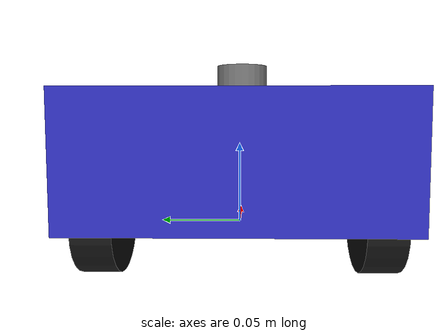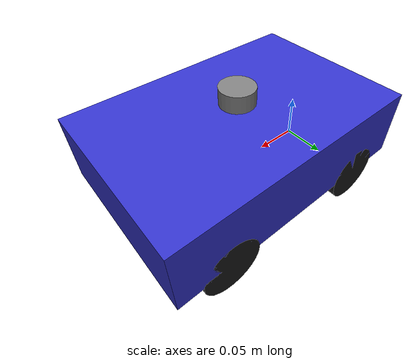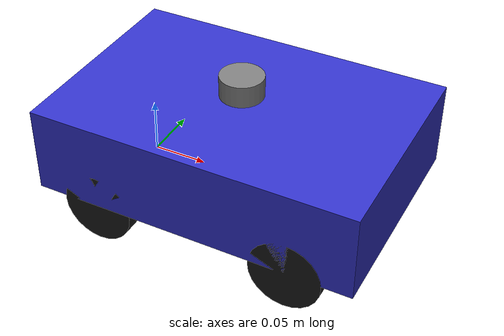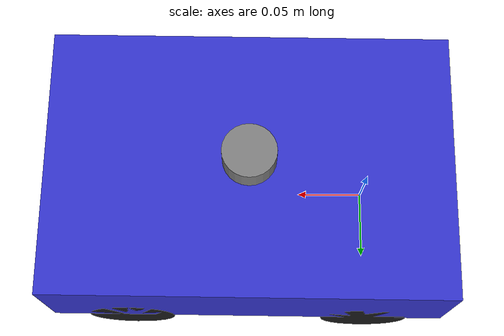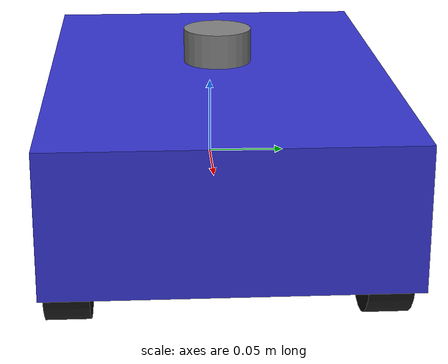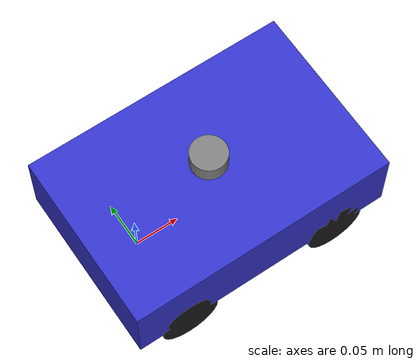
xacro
<?xml version="1.0"?>
<robot xmlns:xacro="http://www.ros.org/wiki/xacro" name="ackermann_vehicle">

  <!-- Configurable vehicle parameters -->
  <xacro:arg name="wheelbase" default="0.18"/>
  <xacro:arg name="vehicle_length" default="0.30"/>
  <xacro:arg name="vehicle_width" default="0.20"/>
  <xacro:arg name="vehicle_height" default="0.08"/>
  <xacro:arg name="rear_axle_to_back" default="0.06"/>
  <xacro:arg name="wheel_radius" default="0.033"/>
  <xacro:arg name="wheel_width" default="0.025"/>

  <xacro:property name="wheelbase" value="$(arg wheelbase)"/>
  <xacro:property name="vehicle_length" value="$(arg vehicle_length)"/>
  <xacro:property name="vehicle_width" value="$(arg vehicle_width)"/>
  <xacro:property name="vehicle_height" value="$(arg vehicle_height)"/>
  <xacro:property name="rear_axle_to_back" value="$(arg rear_axle_to_back)"/>
  <xacro:property name="wheel_radius" value="$(arg wheel_radius)"/>
  <xacro:property name="wheel_width" value="$(arg wheel_width)"/>

  <xacro:property name="track_width" value="${vehicle_width - wheel_width}"/>
  <xacro:property name="body_z_offset" value="${wheel_radius + 0.01}"/>

  <!-- Colors -->
  <material name="blue"><color rgba="0.2 0.2 0.8 1.0"/></material>
  <material name="black"><color rgba="0.1 0.1 0.1 1.0"/></material>
  <material name="grey"><color rgba="0.5 0.5 0.5 1.0"/></material>

  <!-- Wheel macro -->
  <xacro:macro name="wheel" params="name x y">
    <link name="${name}_link">
      <visual>
        <geometry>
          <cylinder radius="${wheel_radius}" length="${wheel_width}"/>
        </geometry>
        <material name="black"/>
      </visual>
      <collision>
        <geometry>
          <cylinder radius="${wheel_radius}" length="${wheel_width}"/>
        </geometry>
      </collision>
      <inertial>
        <mass value="0.05"/>
        <inertia ixx="0.00001" ixy="0" ixz="0" iyy="0.00001" iyz="0" izz="0.00001"/>
      </inertial>
    </link>
    <joint name="${name}_joint" type="continuous">
      <parent link="base_link"/>
      <child link="${name}_link"/>
      <origin xyz="${x} ${y} 0" rpy="${-pi/2} 0 0"/>
      <axis xyz="0 0 1"/>
    </joint>
  </xacro:macro>

  <!-- Steered wheel macro (for front wheels) -->
  <xacro:macro name="steered_wheel" params="name x y">
    <link name="${name}_steering_link">
      <inertial>
        <mass value="0.01"/>
        <inertia ixx="0.000001" ixy="0" ixz="0" iyy="0.000001" iyz="0" izz="0.000001"/>
      </inertial>
    </link>
    <joint name="${name}_steering_joint" type="revolute">
      <parent link="base_link"/>
      <child link="${name}_steering_link"/>
      <origin xyz="${x} ${y} 0" rpy="0 0 0"/>
      <axis xyz="0 0 1"/>
      <limit lower="-0.6" upper="0.6" effort="10" velocity="5"/>
    </joint>
    <link name="${name}_link">
      <visual>
        <geometry>
          <cylinder radius="${wheel_radius}" length="${wheel_width}"/>
        </geometry>
        <material name="black"/>
      </visual>
      <collision>
        <geometry>
          <cylinder radius="${wheel_radius}" length="${wheel_width}"/>
        </geometry>
      </collision>
      <inertial>
        <mass value="0.05"/>
        <inertia ixx="0.00001" ixy="0" ixz="0" iyy="0.00001" iyz="0" izz="0.00001"/>
      </inertial>
    </link>
    <joint name="${name}_joint" type="continuous">
      <parent link="${name}_steering_link"/>
      <child link="${name}_link"/>
      <origin xyz="0 0 0" rpy="${-pi/2} 0 0"/>
      <axis xyz="0 0 1"/>
    </joint>
  </xacro:macro>

  <!-- Base link (at rear axle center) -->
  <link name="base_link">
    <visual>
      <origin xyz="${vehicle_length/2 - rear_axle_to_back} 0 ${body_z_offset}"
              rpy="0 0 0"/>
      <geometry>
        <box size="${vehicle_length} ${vehicle_width} ${vehicle_height}"/>
      </geometry>
      <material name="blue"/>
    </visual>
    <collision>
      <origin xyz="${vehicle_length/2 - rear_axle_to_back} 0 ${body_z_offset}"
              rpy="0 0 0"/>
      <geometry>
        <box size="${vehicle_length} ${vehicle_width} ${vehicle_height}"/>
      </geometry>
    </collision>
    <inertial>
      <mass value="1.0"/>
      <origin xyz="${vehicle_length/2 - rear_axle_to_back} 0 ${body_z_offset}"/>
      <inertia ixx="0.01" ixy="0" ixz="0" iyy="0.01" iyz="0" izz="0.01"/>
    </inertial>
  </link>

  <!-- Rear wheels (fixed steering, driven) -->
  <xacro:wheel name="rear_left_wheel"
               x="0" y="${track_width/2}"/>
  <xacro:wheel name="rear_right_wheel"
               x="0" y="${-track_width/2}"/>

  <!-- Front wheels (steered) -->
  <xacro:steered_wheel name="front_left_wheel"
                       x="${wheelbase}" y="${track_width/2}"/>
  <xacro:steered_wheel name="front_right_wheel"
                       x="${wheelbase}" y="${-track_width/2}"/>

  <!-- LiDAR mount (placeholder) -->
  <link name="lidar_link">
    <visual>
      <geometry>
        <cylinder radius="0.02" length="0.02"/>
      </geometry>
      <material name="grey"/>
    </visual>
    <inertial>
      <mass value="0.01"/>
      <inertia ixx="0.000001" ixy="0" ixz="0" iyy="0.000001" iyz="0" izz="0.000001"/>
    </inertial>
  </link>
  <joint name="lidar_joint" type="fixed">
    <parent link="base_link"/>
    <child link="lidar_link"/>
    <origin xyz="${vehicle_length/2 - rear_axle_to_back} 0 ${body_z_offset + vehicle_height/2 + 0.015}"
            rpy="0 0 0"/>
  </joint>

  <!-- Base footprint (ground projection) -->
  <link name="base_footprint"/>
  <joint name="base_footprint_joint" type="fixed">
    <parent link="base_link"/>
    <child link="base_footprint"/>
    <origin xyz="0 0 ${-wheel_radius}" rpy="0 0 0"/>
  </joint>

</robot>
